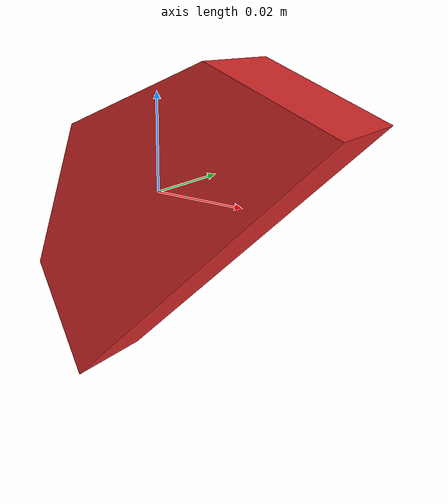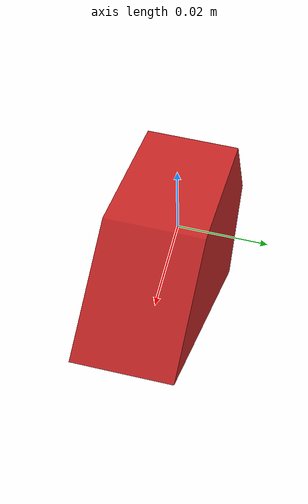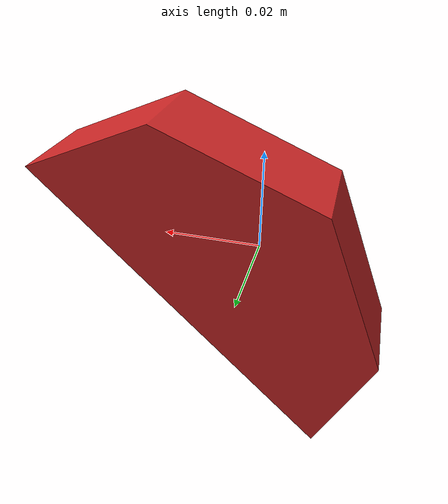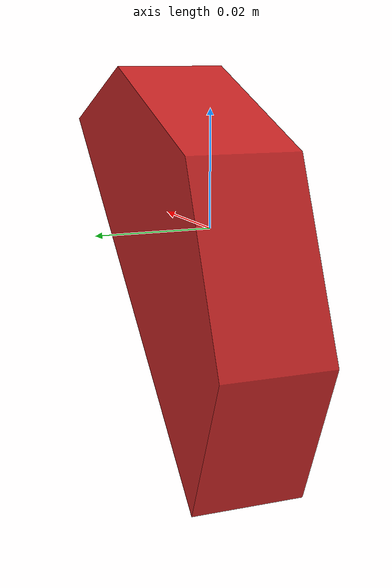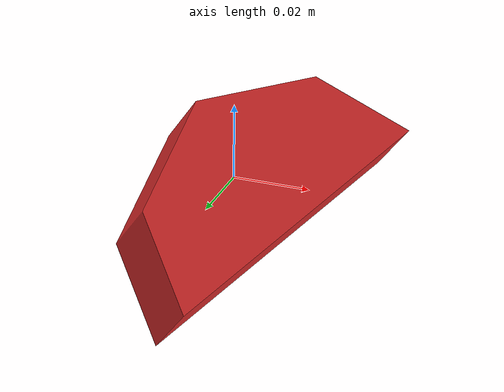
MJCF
<mujoco model="semicircle">
  <default>
    <default class="visual">
      <geom group="2" type="mesh" contype="0" conaffinity="0"/>
    </default>
    <default class="collision">
      <geom group="3" type="mesh"/>
    </default>
  </default>
  <asset>
    <texture type="2d" name="texture" file="texture.png"/>
    <material name="PlasticRed2.005" texture="texture" specular="0.0" shininess="0.32283065800000005"/>
    <mesh file="semicircle.obj"/>
  </asset>
  <worldbody>
    <body name="semicircle">
      <freejoint/>
      <geom material="PlasticRed2.005" mesh="semicircle" class="visual"/>
      <geom mesh="semicircle" class="collision"/>
    </body>
  </worldbody>
</mujoco>
